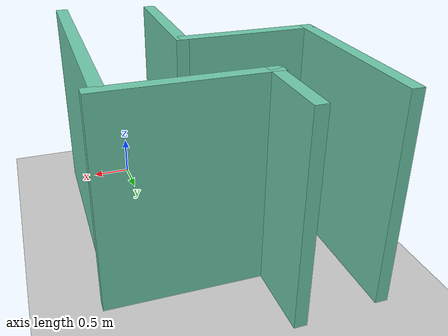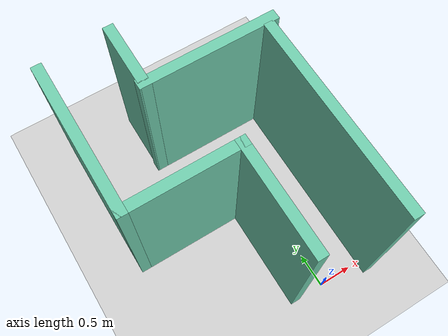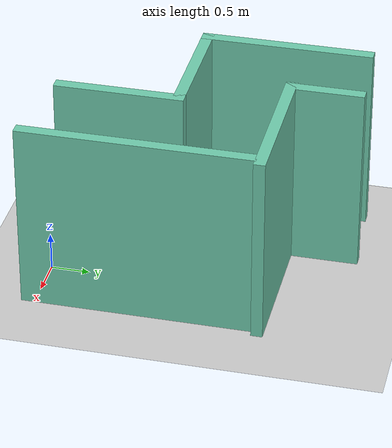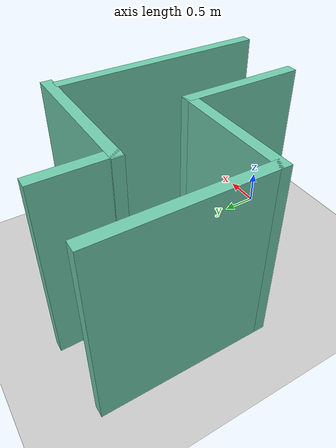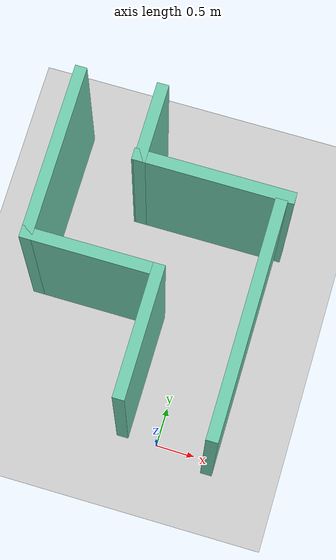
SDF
<sdf version="1.6">
 <world name="default">
  <light name="sun" type="directional">
   <pose>0 0 10 0 -0 0</pose>
   <diffuse>0.8 0.8 0.8 1</diffuse>
   <specular>0.2 0.2 0.2 1</specular>
   <attenuation>
    <range>1000</range>
    <constant>0.9</constant>
    <linear>0.01</linear>
    <quadratic>0.001</quadratic>
   </attenuation>
   <direction>-0.5 0.1 -0.9</direction>
  </light>
  <model name="ground_plane">
   <static>1</static>
   <link name="link">
    <collision name="collision">
     <geometry><plane><normal>0 0 1</normal><size>100 100</size></plane></geometry>
     <surface>
      <contact><collide_bitmask>65535</collide_bitmask></contact>
      <friction><ode><mu>100</mu><mu2>50</mu2></ode></friction>
     </surface>
    </collision>
    <visual name="visual">
     <cast_shadows>0</cast_shadows>
     <geometry><plane><normal>0 0 1</normal><size>100 100</size></plane></geometry>
     <material>
      <script><uri>file://media/materials/scripts/gazebo.material</uri><name>Gazebo/Grey</name></script>
     </material>
    </visual>
   </link>
  </model>
  <gravity>0 0 -9.8</gravity>
  <magnetic_field>6e-06 2.3e-05 -4.2e-05</magnetic_field>
  <atmosphere type="adiabatic"/>
  <physics name="default_physics" default="0" type="ode">
   <max_step_size>0.001</max_step_size>
   <real_time_factor>1</real_time_factor>
   <real_time_update_rate>1000</real_time_update_rate>
  </physics>
  <scene><ambient>0.4 0.4 0.4 1</ambient><background>0.7 0.7 0.7 1</background><shadows>1</shadows></scene>
  <audio><device>default</device></audio>
  <spherical_coordinates>
   <surface_model>EARTH_WGS84</surface_model>
   <latitude_deg>0</latitude_deg>
   <longitude_deg>0</longitude_deg>
   <elevation>0</elevation>
   <heading_deg>0</heading_deg>
  </spherical_coordinates>
  <model name="Lab1">
   <pose>-0.630281 1.82633 0 0 -0 0</pose>
   <link name="Wall_12">
    <collision name="Wall_12_Collision">
     <geometry><box><size>3 0.15 2.5</size></box></geometry>
     <pose>0 0 1.25 0 -0 0</pose>
    </collision>
    <visual name="Wall_12_Visual">
     <pose>0 0 1.25 0 -0 0</pose>
     <geometry><box><size>3 0.15 2.5</size></box></geometry>
     <material>
      <script><uri>file://media/materials/scripts/gazebo.material</uri><name>Gazebo/Grey</name></script>
      <ambient>0.435294 0.796078 0.67451 1</ambient>
     </material>
     <meta><layer>0</layer></meta>
    </visual>
    <pose>1.33967 -0.5 0 0 -0 1.5708</pose>
   </link>
   <link name="Wall_15">
    <collision name="Wall_15_Collision">
     <geometry><box><size>1.02011 0.15 2.5</size></box></geometry>
     <pose>0 0 1.25 0 -0 0</pose>
    </collision>
    <visual name="Wall_15_Visual">
     <pose>0 0 1.25 0 -0 0</pose>
     <geometry><box><size>1.02011 0.15 2.5</size></box></geometry>
     <material>
      <script><uri>file://media/materials/scripts/gazebo.material</uri><name>Gazebo/Grey</name></script>
      <ambient>0.435294 0.796078 0.67451 1</ambient>
     </material>
     <meta><layer>0</layer></meta>
    </visual>
    <pose>-0.410334 1.48994 0 0 -0 -1.5708</pose>
   </link>
   <link name="Wall_16">
    <collision name="Wall_16_Collision">
     <geometry><box><size>2 0.15 2.5</size></box></geometry>
     <pose>0 0 1.25 0 -0 0</pose>
    </collision>
    <visual name="Wall_16_Visual">
     <pose>0 0 1.25 0 -0 0</pose>
     <geometry><box><size>2 0.15 2.5</size></box></geometry>
     <material>
      <script><uri>file://media/materials/scripts/gazebo.material</uri><name>Gazebo/Grey</name></script>
      <ambient>0.435294 0.796078 0.67451 1</ambient>
     </material>
     <meta><layer>0</layer></meta>
    </visual>
    <pose>0.494553 1.05489 0 0 -0 0</pose>
   </link>
   <link name="Wall_27">
    <collision name="Wall_27_Collision">
     <geometry><box><size>1.66955 0.15 2.5</size></box></geometry>
     <pose>0 0 1.25 0 -0 0</pose>
    </collision>
    <visual name="Wall_27_Visual">
     <pose>0 0 1.25 0 -0 0</pose>
     <geometry><box><size>1.66955 0.15 2.5</size></box></geometry>
     <material>
      <script><uri>file://media/materials/scripts/gazebo.material</uri><name>Gazebo/Grey</name></script>
      <ambient>0.435294 0.796078 0.67451 1</ambient>
     </material>
     <meta><layer>0</layer></meta>
    </visual>
    <pose>0.180447 -0.997669 0 0 -0 -1.5708</pose>
   </link>
   <link name="Wall_29">
    <collision name="Wall_29_Collision">
     <geometry><box><size>1.75 0.15 2.5</size></box></geometry>
     <pose>0 0 1.25 0 -0 0</pose>
    </collision>
    <visual name="Wall_29_Visual">
     <pose>0 0 1.25 0 -0 0</pose>
     <geometry><box><size>1.75 0.15 2.5</size></box></geometry>
     <material>
      <script><uri>file://media/materials/scripts/gazebo.material</uri><name>Gazebo/Grey</name></script>
      <ambient>0.435294 0.796078 0.67451 1</ambient>
     </material>
     <meta><layer>0</layer></meta>
    </visual>
    <pose>-0.619553 -0.237895 0 0 -0 3.14159</pose>
   </link>
   <link name="Wall_31">
    <collision name="Wall_31_Collision">
     <geometry><box><size>2.25 0.15 2.5</size></box></geometry>
     <pose>0 0 1.25 0 -0 0</pose>
    </collision>
    <visual name="Wall_31_Visual">
     <pose>0 0 1.25 0 -0 0</pose>
     <geometry><box><size>2.25 0.15 2.5</size></box></geometry>
     <material>
      <script><uri>file://media/materials/scripts/gazebo.material</uri><name>Gazebo/Grey</name></script>
      <ambient>0.435294 0.796078 0.67451 1</ambient>
     </material>
     <meta><layer>0</layer></meta>
    </visual>
    <pose>-1.41955 0.812104 0 0 -0 1.5708</pose>
   </link>
   <static>1</static>
  </model>
 </world>
</sdf>
